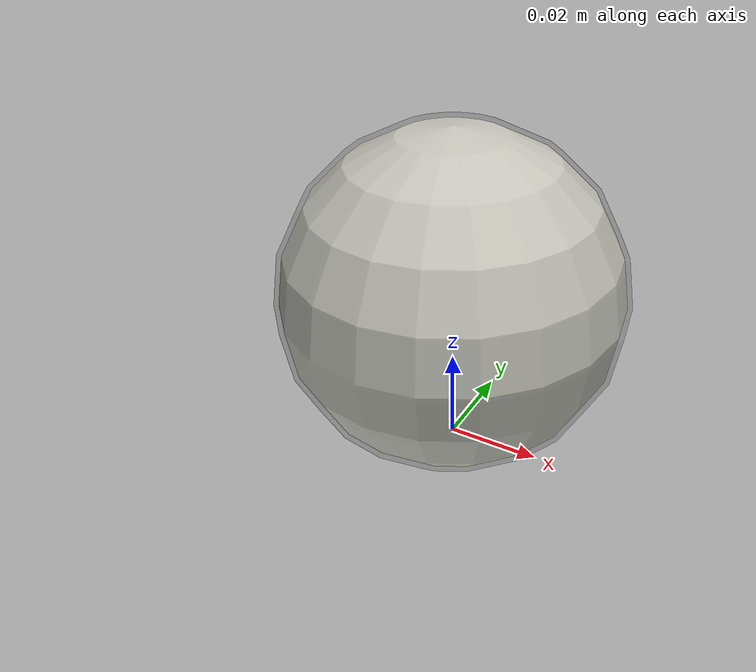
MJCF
<mujoco model="ycb_baseball">
  <compiler autolimits="true"/>
  <default>
    <geom friction="0.8 0.01 0.001" condim="3" solref="0.008 1" solimp="0.90 0.95 0.001" margin="0.001"/>
  </default>
  <worldbody>
    <body name="ycb_baseball" pos="0 0 0.036">
      <freejoint/>
      <inertial pos="0 0 0" mass="0.09" diaginertia="0.000047 0.000047 0.000047"/>
      <geom name="ycb_baseball_collision" type="sphere" size="0.036" rgba="0.25 0.25 0.25 0.25"/>
      <geom name="ycb_baseball_visual" type="sphere" size="0.035" contype="0" conaffinity="0" group="1" rgba="0.95 0.95 0.90 1"/>
    </body>
  </worldbody>
</mujoco>
